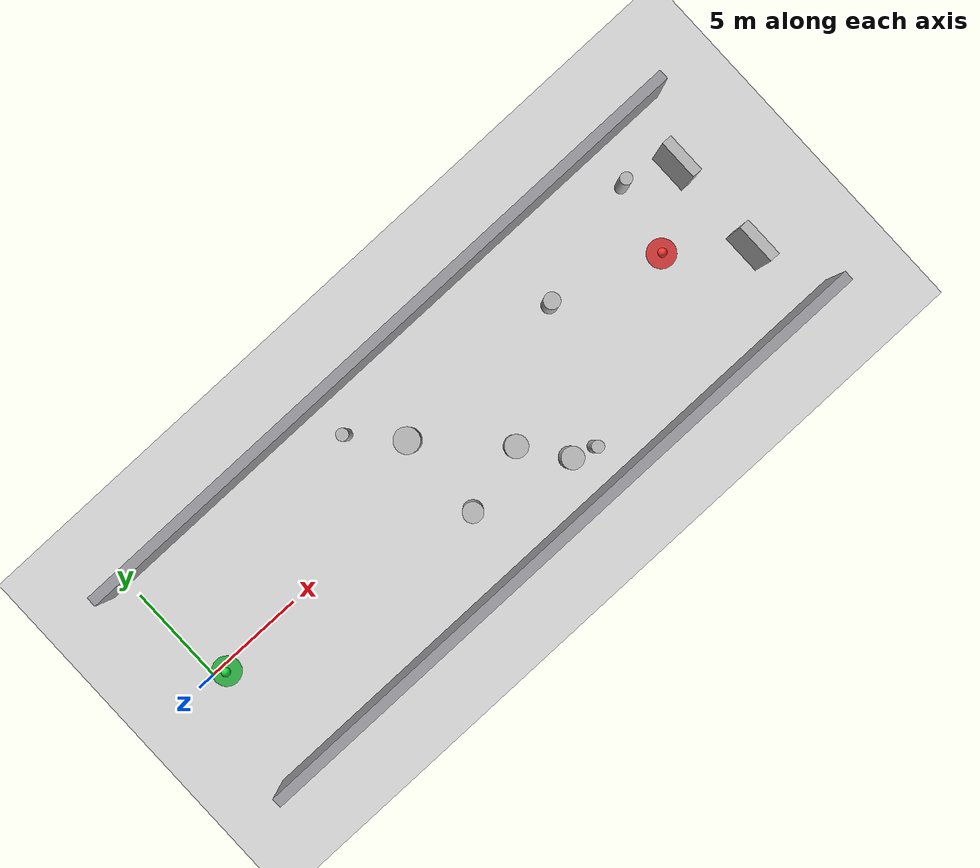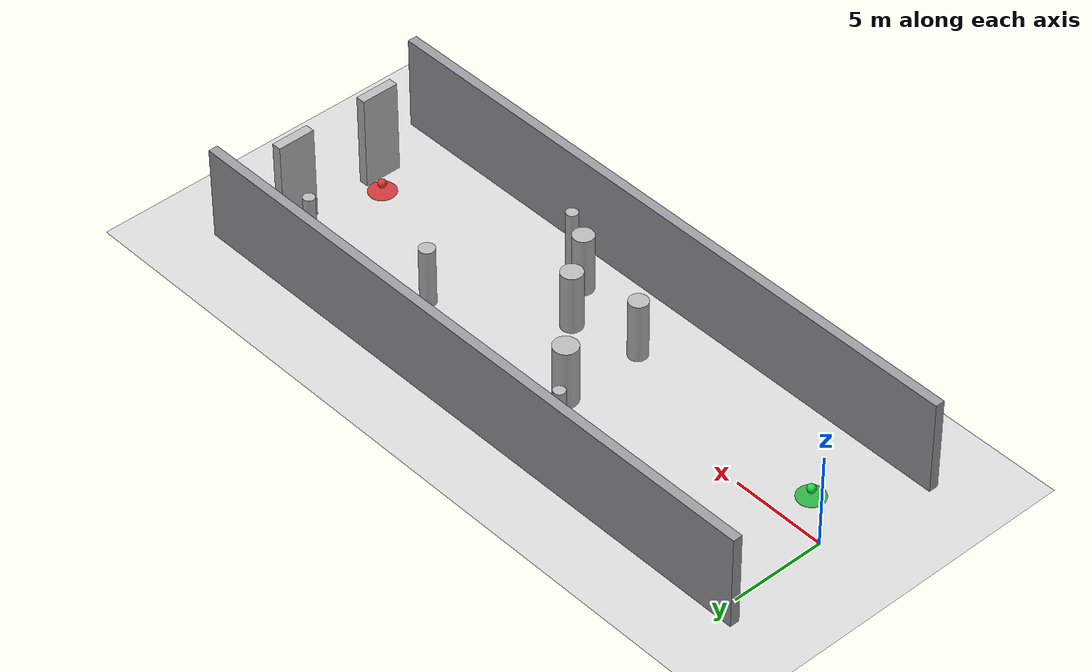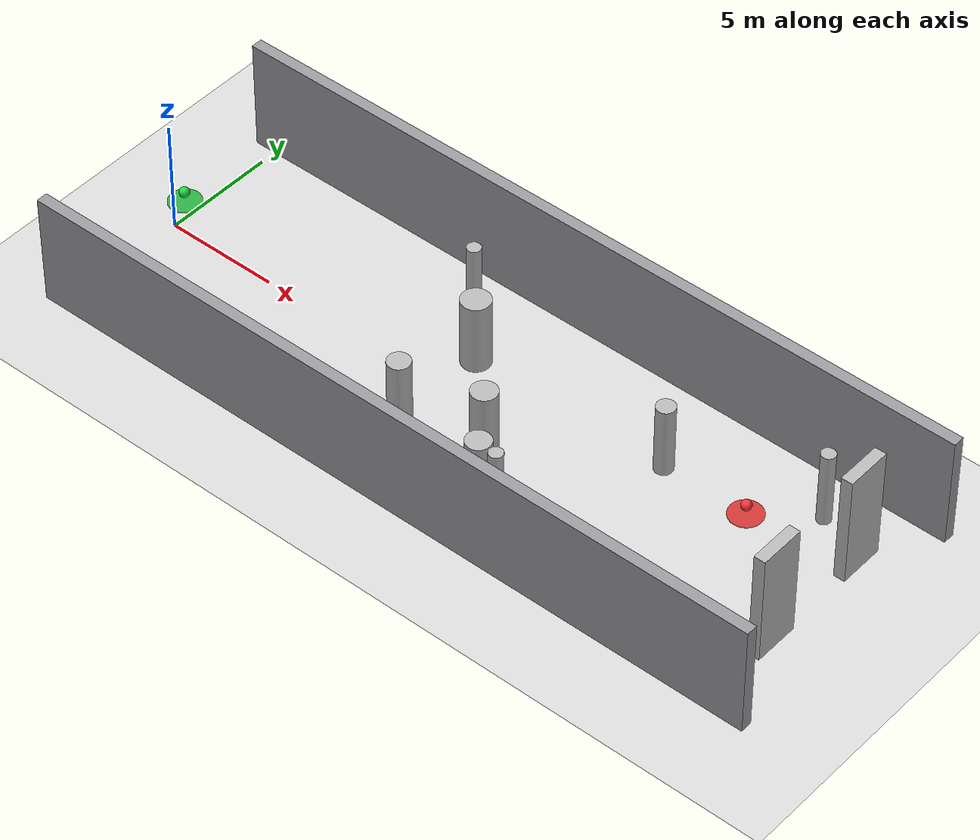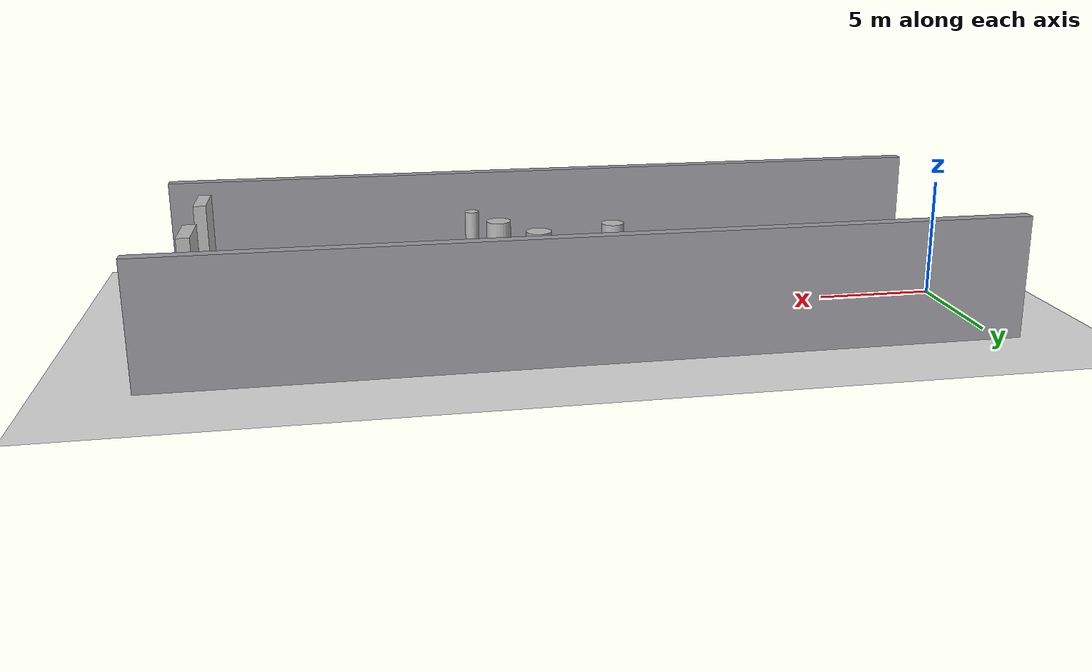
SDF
<sdf version="1.10">
 <world name="obstacle_avoidance">
  <physics type="ode">
   <max_step_size>0.0040000000000000001</max_step_size>
   <real_time_factor>1</real_time_factor>
   <real_time_update_rate>250</real_time_update_rate>
  </physics>
  <plugin name="gz::sim::systems::Physics" filename="gz-sim-physics-system"/>
  <plugin name="gz::sim::systems::UserCommands" filename="gz-sim-user-commands-system"/>
  <plugin name="gz::sim::systems::SceneBroadcaster" filename="gz-sim-scene-broadcaster-system"/>
  <plugin name="gz::sim::systems::Contact" filename="gz-sim-contact-system"/>
  <plugin name="gz::sim::systems::Imu" filename="gz-sim-imu-system"/>
  <plugin name="gz::sim::systems::AirPressure" filename="gz-sim-air-pressure-system"/>
  <plugin name="gz::sim::systems::AirSpeed" filename="gz-sim-air-speed-system"/>
  <plugin name="gz::sim::systems::ApplyLinkWrench" filename="gz-sim-apply-link-wrench-system"/>
  <plugin name="gz::sim::systems::NavSat" filename="gz-sim-navsat-system"/>
  <plugin name="gz::sim::systems::Magnetometer" filename="gz-sim-magnetometer-system"/>
  <plugin name="gz::sim::systems::Sensors" filename="gz-sim-sensors-system">
   <render_engine>ogre2</render_engine>
  </plugin>
  <plugin name="custom::OpticalFlowSystem" filename="libOpticalFlowSystem.so"/>
  <plugin name="custom::GstCameraSystem" filename="libGstCameraSystem.so"/>
  <gravity>0 0 -9.8000000000000007</gravity>
  <magnetic_field>6.0000000000000002e-06 2.3e-05 -4.1999999999999998e-05</magnetic_field>
  <atmosphere type="adiabatic"/>
  <scene>
   <grid>true</grid>
   <ambient>0.449999988 0.449999988 0.449999988 1</ambient>
   <background>0.74000001 0.769999981 0.819999993 1</background>
   <shadows>true</shadows>
  </scene>
  <spherical_coordinates>
   <surface_model>EARTH_WGS84</surface_model>
   <world_frame_orientation>ENU</world_frame_orientation>
   <latitude_deg>47.397971057728974</latitude_deg>
   <longitude_deg>8.5461637398001464</longitude_deg>
   <elevation>0</elevation>
   <heading_deg>0</heading_deg>
  </spherical_coordinates>
  <model name="ground_plane">
   <static>true</static>
   <link name="link">
    <collision name="collision">
     <geometry><plane><normal>0 0 1</normal><size>1 1</size></plane></geometry>
    </collision>
    <visual name="visual">
     <geometry><plane><normal>0 0 1</normal><size>120 120</size></plane></geometry>
     <material>
      <ambient>0.850000024 0.850000024 0.850000024 1</ambient>
      <diffuse>0.850000024 0.850000024 0.850000024 1</diffuse>
      <specular>0.400000006 0.400000006 0.400000006 1</specular>
     </material>
    </visual>
    <inertial>
     <mass>1</mass>
     <inertia><ixx>1</ixx><ixy>0</ixy><ixz>0</ixz><iyy>1</iyy><iyz>0</iyz><izz>1</izz></inertia>
    </inertial>
   </link>
  </model>
  <model name="lane_left_wall">
   <static>false</static>
   <pose>16.059795 5.967986 2.500000 0 0 0.000000</pose>
   <link name="link">
    <collision name="collision">
     <geometry><box><size>34.000000 0.500000 5.000000</size></box></geometry>
    </collision>
    <visual name="visual">
     <geometry><box><size>34.000000 0.500000 5.000000</size></box></geometry>
     <material>
      <ambient>0.5 0.5 0.519999981 1</ambient>
      <diffuse>0.600000024 0.600000024 0.620000005 1</diffuse>
     </material>
    </visual>
    <inertial>
     <mass>1</mass>
     <inertia><ixx>1</ixx><ixy>0</ixy><ixz>0</ixz><iyy>1</iyy><iyz>0</iyz><izz>1</izz></inertia>
    </inertial>
   </link>
  </model>
  <model name="lane_right_wall">
   <static>false</static>
   <pose>16.059795 -5.967986 2.500000 0 0 0.000000</pose>
   <link name="link">
    <collision name="collision">
     <geometry><box><size>34.000000 0.500000 5.000000</size></box></geometry>
    </collision>
    <visual name="visual">
     <geometry><box><size>34.000000 0.500000 5.000000</size></box></geometry>
     <material>
      <ambient>0.5 0.5 0.519999981 1</ambient>
      <diffuse>0.600000024 0.600000024 0.620000005 1</diffuse>
     </material>
    </visual>
    <inertial>
     <mass>1</mass>
     <inertia><ixx>1</ixx><ixy>0</ixy><ixz>0</ixz><iyy>1</iyy><iyz>0</iyz><izz>1</izz></inertia>
    </inertial>
   </link>
  </model>
  <model name="cyl_01">
   <static>false</static>
   <pose>12 4 1.5999992086633334 2.2687360345456637e-18 4.5657228771581074e-18 -1.896154608907737e-19</pose>
   <link name="link">
    <collision name="collision">
     <geometry>
      <cylinder><radius>0.29999999999999999</radius><length>3.2000000000000002</length></cylinder>
     </geometry>
    </collision>
    <visual name="visual">
     <geometry>
      <cylinder><radius>0.29999999999999999</radius><length>3.2000000000000002</length></cylinder>
     </geometry>
    </visual>
    <inertial>
     <mass>1</mass>
     <inertia><ixx>1</ixx><ixy>0</ixy><ixz>0</ixz><iyy>1</iyy><iyz>0</iyz><izz>1</izz></inertia>
    </inertial>
   </link>
  </model>
  <model name="cyl_02">
   <static>false</static>
   <pose>20 -4.0999999999999996 1.7999992086633334 -5.95015447457351e-18 -7.1830272029298781e-18 8.102279845254366e-20</pose>
   <link name="link">
    <collision name="collision">
     <geometry>
      <cylinder><radius>0.29999999999999999</radius><length>3.6000000000000001</length></cylinder>
     </geometry>
    </collision>
    <visual name="visual">
     <geometry>
      <cylinder><radius>0.29999999999999999</radius><length>3.6000000000000001</length></cylinder>
     </geometry>
    </visual>
    <inertial>
     <mass>1</mass>
     <inertia><ixx>1</ixx><ixy>0</ixy><ixz>0</ixz><iyy>1</iyy><iyz>0</iyz><izz>1</izz></inertia>
    </inertial>
   </link>
  </model>
  <model name="cyl_03">
   <static>false</static>
   <pose>29 3.7999999999999998 1.6999992086633333 2.9183300555717811e-18 3.6794603956307752e-18 6.9962869253696579e-20</pose>
   <link name="link">
    <collision name="collision">
     <geometry>
      <cylinder><radius>0.29999999999999999</radius><length>3.3999999999999999</length></cylinder>
     </geometry>
    </collision>
    <visual name="visual">
     <geometry>
      <cylinder><radius>0.29999999999999999</radius><length>3.3999999999999999</length></cylinder>
     </geometry>
    </visual>
    <inertial>
     <mass>1</mass>
     <inertia><ixx>1</ixx><ixy>0</ixy><ixz>0</ixz><iyy>1</iyy><iyz>0</iyz><izz>1</izz></inertia>
    </inertial>
   </link>
  </model>
  <model name="block_01">
   <static>false</static>
   <pose>13.932918 1.858335 1.600000 0 0 0.000000</pose>
   <link name="link">
    <collision name="collision">
     <geometry><cylinder><radius>0.626193</radius><length>3.200000</length></cylinder></geometry>
    </collision>
    <visual name="visual">
     <geometry><cylinder><radius>0.626193</radius><length>3.200000</length></cylinder></geometry>
    </visual>
    <inertial>
     <mass>1</mass>
     <inertia><ixx>1</ixx><ixy>0</ixy><ixz>0</ixz><iyy>1</iyy><iyz>0</iyz><izz>1</izz></inertia>
    </inertial>
   </link>
  </model>
  <model name="block_02">
   <static>false</static>
   <pose>13.932918 -2.501714 1.600000 0 0 0.000000</pose>
   <link name="link">
    <collision name="collision">
     <geometry><cylinder><radius>0.491848</radius><length>3.200000</length></cylinder></geometry>
    </collision>
    <visual name="visual">
     <geometry><cylinder><radius>0.491848</radius><length>3.200000</length></cylinder></geometry>
    </visual>
    <inertial>
     <mass>1</mass>
     <inertia><ixx>1</ixx><ixy>0</ixy><ixz>0</ixz><iyy>1</iyy><iyz>0</iyz><izz>1</izz></inertia>
    </inertial>
   </link>
  </model>
  <model name="block_03">
   <static>false</static>
   <pose>22.909514 2.044755 1.600000 0 0 0.000000</pose>
   <link name="link">
    <collision name="collision">
     <geometry><cylinder><radius>0.401606</radius><length>3.200000</length></cylinder></geometry>
    </collision>
    <visual name="visual">
     <geometry><cylinder><radius>0.401606</radius><length>3.200000</length></cylinder></geometry>
    </visual>
    <inertial>
     <mass>1</mass>
     <inertia><ixx>1</ixx><ixy>0</ixy><ixz>0</ixz><iyy>1</iyy><iyz>0</iyz><izz>1</izz></inertia>
    </inertial>
   </link>
  </model>
  <model name="block_04">
   <static>false</static>
   <pose>17.349551 -1.649017 1.600000 0 0 0.000000</pose>
   <link name="link">
    <collision name="collision">
     <geometry><cylinder><radius>0.553390</radius><length>3.200000</length></cylinder></geometry>
    </collision>
    <visual name="visual">
     <geometry><cylinder><radius>0.553390</radius><length>3.200000</length></cylinder></geometry>
    </visual>
    <inertial>
     <mass>1</mass>
     <inertia><ixx>1</ixx><ixy>0</ixy><ixz>0</ixz><iyy>1</iyy><iyz>0</iyz><izz>1</izz></inertia>
    </inertial>
   </link>
  </model>
  <model name="block_05">
   <static>false</static>
   <pose>18.852744 -3.731664 1.600000 0 0 0.000000</pose>
   <link name="link">
    <collision name="collision">
     <geometry><cylinder><radius>0.534892</radius><length>3.200000</length></cylinder></geometry>
    </collision>
    <visual name="visual">
     <geometry><cylinder><radius>0.534892</radius><length>3.200000</length></cylinder></geometry>
    </visual>
    <inertial>
     <mass>1</mass>
     <inertia><ixx>1</ixx><ixy>0</ixy><ixz>0</ixz><iyy>1</iyy><iyz>0</iyz><izz>1</izz></inertia>
    </inertial>
   </link>
  </model>
  <model name="start_marker">
   <static>true</static>
   <pose>0.900840 -0.266112 2.000000 0 0 0.000000</pose>
   <link name="link">
    <gravity>false</gravity>
    <kinematic>true</kinematic>
    <visual name="base_ring">
     <geometry>
      <cylinder><radius>0.69999999999999996</radius><length>0.040000000000000001</length></cylinder>
     </geometry>
     <material>
      <ambient>0.100000001 0.699999988 0.200000003 0.850000024</ambient>
      <diffuse>0.100000001 0.699999988 0.200000003 0.850000024</diffuse>
      <specular>0.200000003 0.200000003 0.200000003 1</specular>
     </material>
    </visual>
    <visual name="center_sphere">
     <pose>0 0 0.45000000000000001 0 0 0</pose>
     <geometry><sphere><radius>0.22</radius></sphere></geometry>
     <material>
      <ambient>0.100000001 0.850000024 0.25 1</ambient>
      <diffuse>0.100000001 0.850000024 0.25 1</diffuse>
      <specular>0.300000012 0.300000012 0.300000012 1</specular>
     </material>
    </visual>
    <inertial>
     <mass>1</mass>
     <inertia><ixx>1</ixx><ixy>0</ixy><ixz>0</ixz><iyy>1</iyy><iyz>0</iyz><izz>1</izz></inertia>
    </inertial>
   </link>
  </model>
  <model name="goal_marker">
   <static>true</static>
   <pose>28.018750 0.292490 2.380000 0 0 0.000000</pose>
   <link name="link">
    <gravity>false</gravity>
    <kinematic>true</kinematic>
    <visual name="base_ring">
     <geometry>
      <cylinder><radius>0.69999999999999996</radius><length>0.040000000000000001</length></cylinder>
     </geometry>
     <material>
      <ambient>0.850000024 0.150000006 0.150000006 0.850000024</ambient>
      <diffuse>0.850000024 0.150000006 0.150000006 0.850000024</diffuse>
      <specular>0.200000003 0.200000003 0.200000003 1</specular>
     </material>
    </visual>
    <visual name="center_sphere">
     <pose>0 0 0.45000000000000001 0 0 0</pose>
     <geometry><sphere><radius>0.22</radius></sphere></geometry>
     <material>
      <ambient>0.949999988 0.200000003 0.200000003 1</ambient>
      <diffuse>0.949999988 0.200000003 0.200000003 1</diffuse>
      <specular>0.300000012 0.300000012 0.300000012 1</specular>
     </material>
    </visual>
    <inertial>
     <mass>1</mass>
     <inertia><ixx>1</ixx><ixy>0</ixy><ixz>0</ixz><iyy>1</iyy><iyz>0</iyz><izz>1</izz></inertia>
    </inertial>
   </link>
  </model>
  <model name="goal_gate_left">
   <static>false</static>
   <pose>31.218750 2.792490 2.500000 0 0 0.000000</pose>
   <link name="link">
    <collision name="collision">
     <geometry><box><size>0.500000 2.000000 5.000000</size></box></geometry>
    </collision>
    <visual name="visual"><geometry><box><size>0.500000 2.000000 5.000000</size></box></geometry></visual>
    <inertial>
     <mass>1</mass>
     <inertia><ixx>1</ixx><ixy>0</ixy><ixz>0</ixz><iyy>1</iyy><iyz>0</iyz><izz>1</izz></inertia>
    </inertial>
   </link>
  </model>
  <model name="goal_gate_right">
   <static>false</static>
   <pose>31.218750 -2.207510 2.500000 0 0 0.000000</pose>
   <link name="link">
    <collision name="collision">
     <geometry><box><size>0.500000 2.000000 5.000000</size></box></geometry>
    </collision>
    <visual name="visual"><geometry><box><size>0.500000 2.000000 5.000000</size></box></geometry></visual>
    <inertial>
     <mass>1</mass>
     <inertia><ixx>1</ixx><ixy>0</ixy><ixz>0</ixz><iyy>1</iyy><iyz>0</iyz><izz>1</izz></inertia>
    </inertial>
   </link>
  </model>
  <light name="sunUTC" type="directional">
   <pose>0 0 500 0 0 0</pose>
   <intensity>1</intensity>
   <direction>0.001 0.625 -0.78000000000000003</direction>
   <diffuse>0.899999976 0.899999976 0.899999976 1</diffuse>
   <specular>0.25 0.25 0.25 1</specular>
   <attenuation><range>2000</range><linear>0</linear><constant>1</constant><quadratic>0</quadratic></attenuation>
   <spot><inner_angle>0</inner_angle><outer_angle>0</outer_angle><falloff>0</falloff></spot>
  </light>
 </world>
</sdf>
